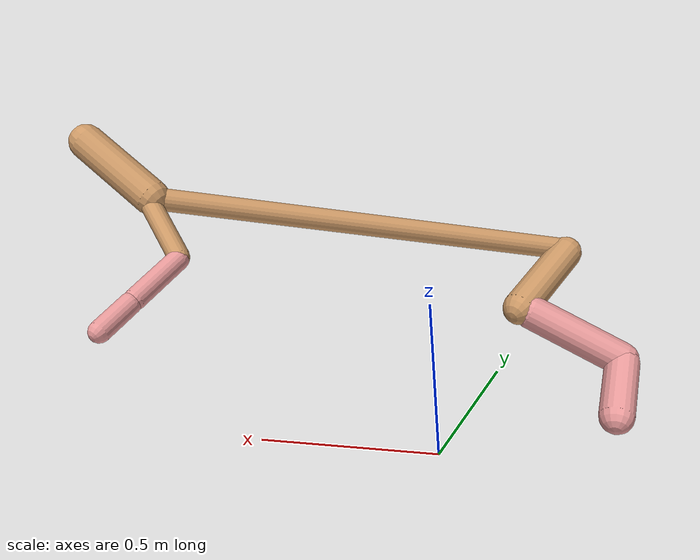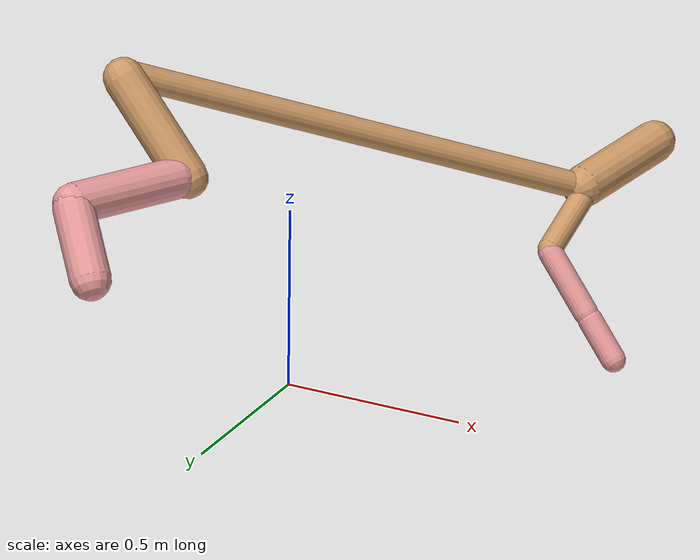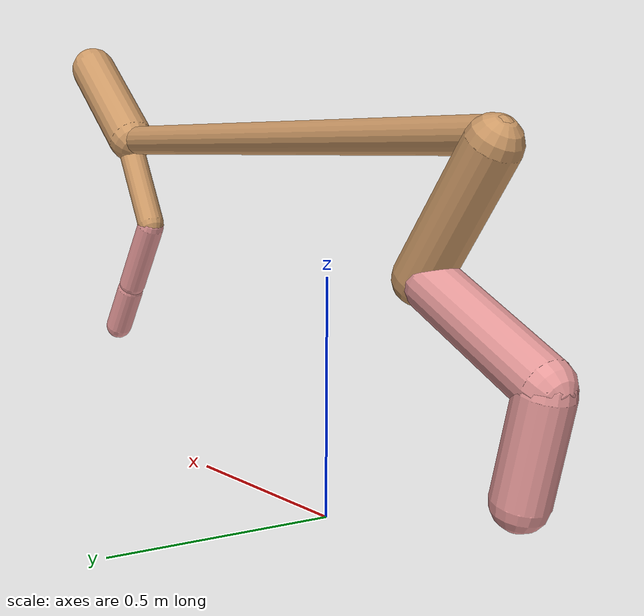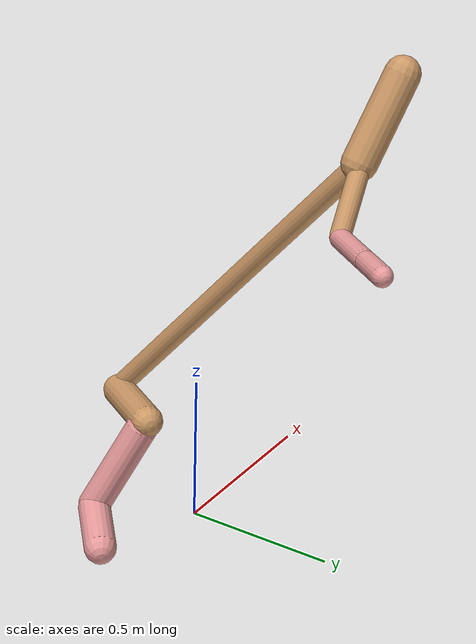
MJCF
<mujoco model="cheetah">
  <compiler angle="radian" coordinate="local" inertiafromgeom="true" settotalmass="14" />
  <default>
    <joint armature=".1" damping=".01" limited="true" solimplimit="0 .8 .03" solreflimit=".02 1" stiffness="8" />
    <geom conaffinity="0" condim="3" contype="1" friction="0.8 .1 .1" rgba="0.8 0.6 .4 1" solimp="0.0 0.8 0.01" solref="0.02 1" />
    <motor ctrllimited="true" ctrlrange="-1 1" />
  </default>
  <size nstack="300000" nuser_geom="1" />
  <option gravity="0 0 -9.81" timestep="0.01" />
  <worldbody>
    <body name="torso" pos="0.0 0.0 0.7849180092448741">
      <joint armature="0" axis="1 0 0" damping="0" limited="false" name="ignorex" pos="0 0 0" stiffness="0" type="slide" />
      <joint armature="0" axis="0 0 1" damping="0" limited="false" name="ignorez" pos="0 0 0" stiffness="0" type="slide" />
      <joint armature="0" axis="0 1 0" damping="0" limited="false" name="ignorey" pos="0 0 0" stiffness="0" type="hinge" />
      <geom fromto="-0.5 0.0 0.0 0.9076034790633046 0.0 0.0" name="torso" size="0.03608306862843955" type="capsule" />
      <geom axisangle="0 1 0 .87" name="head" pos="1.0076034790633046 0.0 0.1" size="0.05831147838588494 0.15" type="capsule" />

      <body name="bthigh" pos="-.5 0 0">
        <joint axis="0 1 0" damping="6" name="bthigh" pos="0 0 0" range="-.52 1.05" stiffness="240" type="hinge" />
        <geom axisangle="0 1 0 -3.8" name="bthigh" pos="0.10636223430834521 0.0 -0.13827090460084876" size="0.05453369465730056 0.15543484011907352" type="capsule" />
        <body name="bshin" pos="0.1727244686166904 0.0 -0.2665418092016975">
          <joint axis="0 1 0" damping="4.5" name="bshin" pos="0 0 0" range="-.785 .785" stiffness="180" type="hinge" />
          <geom axisangle="0 1 0 -2.03" name="bshin" pos="-0.14965503938231328 0.0 -0.07482751969115664" rgba="0.9 0.6 0.6 1" size="0.05453369465730056 0.16079466219214503" type="capsule" />
          <body name="bfoot" pos="-0.29931007876462656 0.0 -0.14965503938231328">
            <joint axis="0 1 0" damping="3" name="bfoot" pos="0 0 0" range="-.4 .785" stiffness="120" type="hinge" />
            <geom axisangle="0 1 0 -.27" name="bfoot" pos="0.03199875073075559 0.0 -0.10346262736277641" rgba="0.9 0.6 0.6 1" size="0.05453369465730056 0.10076465497374422" type="capsule" />
            <inertial mass="10" />
          </body>
        </body>
      </body>
      <body name="fthigh" pos="0.9076034790633045 0.0 0.0">
        <joint axis="0 1 0" damping="4.5" name="fthigh" pos="0 0 0" range="-1.5 0.8" stiffness="180" type="hinge" />
        <geom axisangle="0 1 0 .52" name="fthigh" pos="-0.063565852530558 0.0 -0.10897003290952799" size="0.03357028721338878 0.12023056666584526" type="capsule" />
        <body name="fshin" pos="-0.127131705061116 0.0 -0.21794006581905598">
          <joint axis="0 1 0" damping="3" name="fshin" pos="0 0 0" range="-1.2 1.1" stiffness="120" type="hinge" />
          <geom axisangle="0 1 0 -.6" name="fshin" pos="0.05904137928511395 0.0 -0.08174960208708085" rgba="0.9 0.6 0.6 1" size="0.03357028721338878 0.09582285764345562" type="capsule" />
          <body name="ffoot" pos="0.1180827585702279 0.0 -0.1634992041741617">
            <joint axis="0 1 0" damping="1.5" name="ffoot" pos="0 0 0" range="-3.1 -0.3" stiffness="60" type="hinge" />
            <geom axisangle="0 1 0 -.6" name="ffoot" pos="0.0413657010462022 0.0 -0.0643466460718701" rgba="0.9 0.6 0.6 1" size="0.03357028721338878 0.06327924561360278" type="capsule" />
            <inertial mass="10" />
          </body>
        </body>
      </body>
    </body>
  </worldbody>
  <actuator>
    <motor gear="120" joint="bthigh" name="bthigh" />
    <motor gear="90" joint="bshin" name="bshin" />
    <motor gear="60" joint="bfoot" name="bfoot" />
    <motor gear="120" joint="fthigh" name="fthigh" />
    <motor gear="60" joint="fshin" name="fshin" />
    <motor gear="30" joint="ffoot" name="ffoot" />
  </actuator>
</mujoco>
